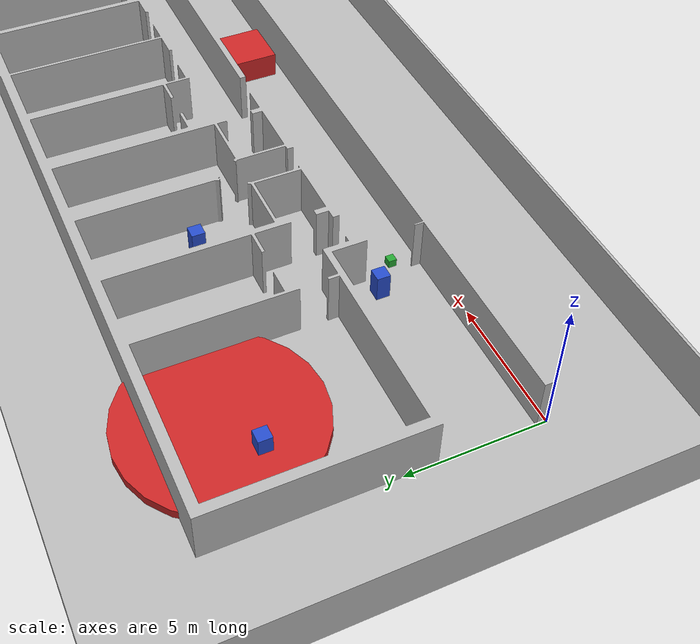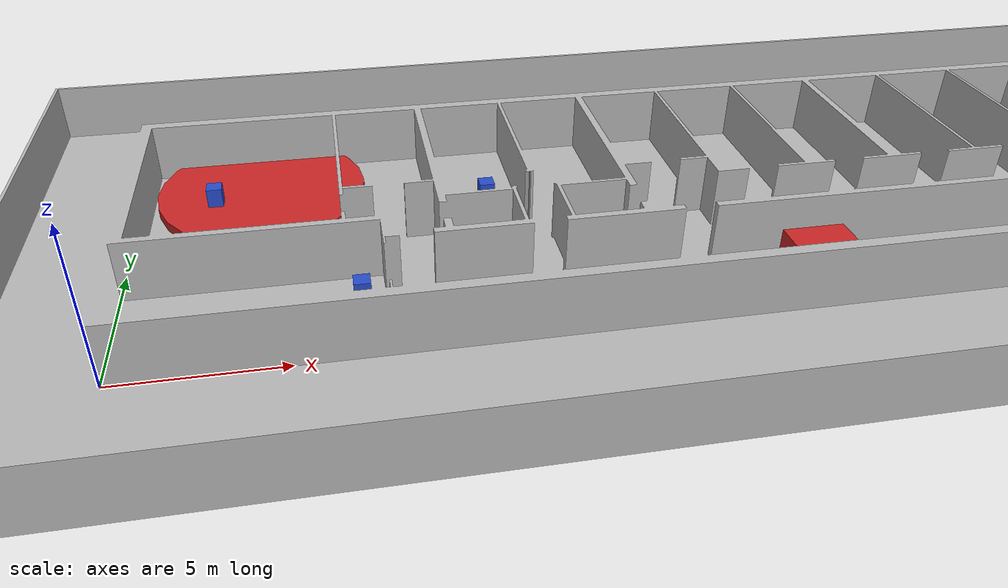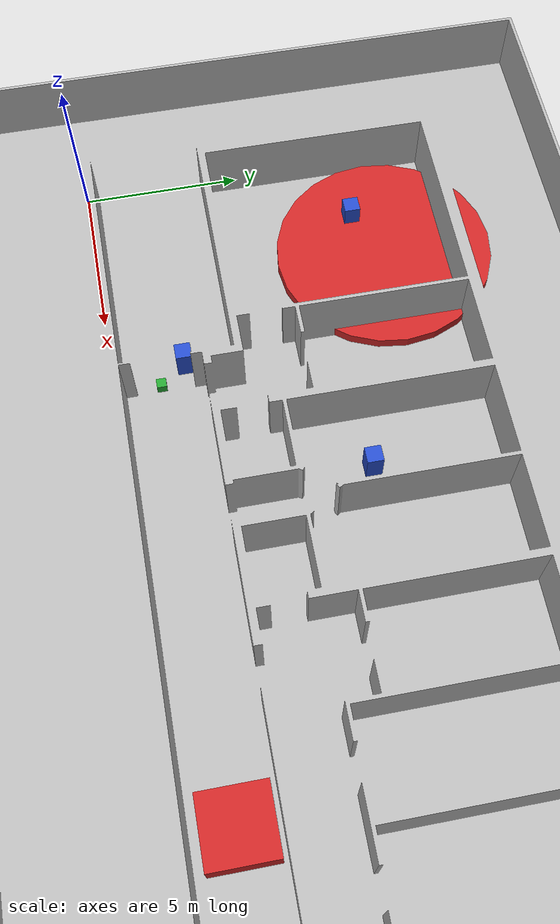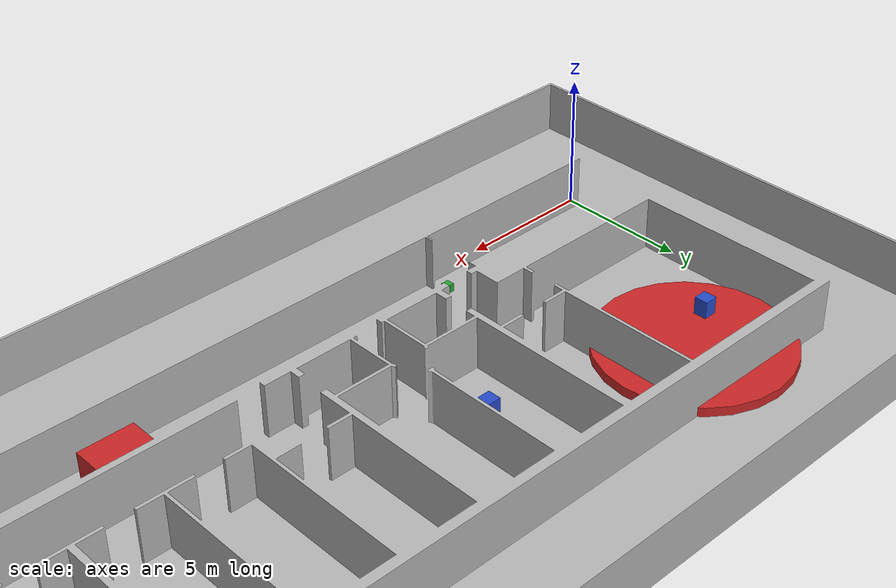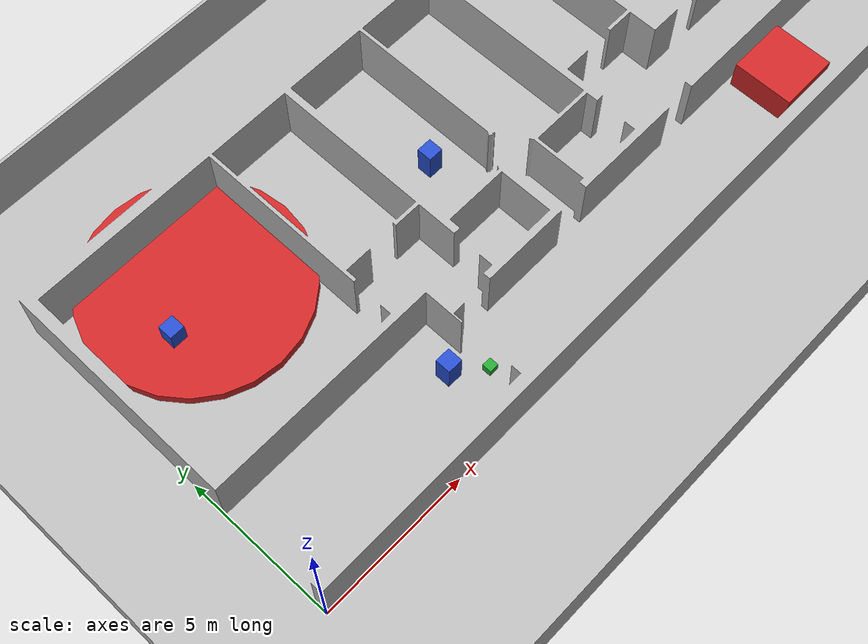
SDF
<?xml version="1.0" ?>
<sdf version="1.4">
  <world name="default">
    <!-- Initial Camera Position -->
    <gui>
      <camera name="camera_default">
        <pose>
          -4.0 2.0 8.0 0.0 0.7 0.0
        </pose>
      </camera>
    </gui>
    <!-- A global light source -->
    <include>
      <uri>model://sun</uri>
    </include>
    <!-- Own physics settings to speed up simulation -->
    <physics type='ode'>
      <max_step_size>0.01</max_step_size>
      <real_time_factor>1</real_time_factor>
      <real_time_update_rate>100</real_time_update_rate>
      <gravity>0 0 -9.8</gravity>
    </physics>
    <include>
      <uri>model://distributed_systems_department</uri>
    </include>
    <model name='victim_stopfer'>
        <pose frame=''>2.5 8.5 0.5 0 -0 0</pose>
        <include>
           <uri>model://victim</uri>
        </include>
    </model>
    <model name='victim_taker'>
        <pose frame=''>11.50 7.3 0.5 0 -0 0</pose>
        <include>
           <uri>model://victim</uri>
        </include>
    </model>
    <model name='victim_postdoc'>
        <pose frame=''>7.0 2.3 0.5 0 -0 0</pose>
        <include>
           <uri>model://victim</uri>
        </include>
    </model>
    <model name='fire_floor'>
        <pose frame=''>21.0 1.7 0.5 0 -0 0</pose>
        <include>
           <uri>model://fire</uri>
        </include>
    </model>
    <model name='contaminated_area_lab'>
        <pose frame=''>4.0 9.3 0.1 0 -0 0</pose>
    	<static>true</static>
		<link name='link'>
			<visual name='visual'>
				<geometry>
					<cylinder>
					  	<radius>3.50</radius>
					  	<length>0.50</length>
					</cylinder>
				</geometry>
				<material>
					<script>
						<name>Gazebo/Red</name>
						<uri>file://media/materials/scripts/gazebo.material</uri>
					</script>
				</material>
			</visual>
			<self_collide>0</self_collide>
			<kinematic>0</kinematic>
			<gravity>1</gravity>
		</link>
    </model>
    <model name='landmark_door_floor'>
        <pose frame=''>7.8 1.5 0.5 0 -0 0</pose>
        <include>
           <uri>model://landmark</uri>
        </include>
    </model>
  </world>
</sdf>

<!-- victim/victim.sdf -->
<sdf version="1.4">
    <model name='victim'>
		<link name='link'>
			<inertial>
		  		<mass>1</mass>
			  	<inertia>
					<ixx>0.166667</ixx>
					<ixy>0</ixy>
					<ixz>0</ixz>
					<iyy>0.166667</iyy>
					<iyz>0</iyz>
					<izz>0.166667</izz>
		  		</inertia>
			</inertial>
			<collision name='collision'>
				  <geometry>
						<box>
						  	<size>0.5 0.5 1</size>
						</box>
				  </geometry>
				  <max_contacts>10</max_contacts>
				  <surface>
						<contact>
						  	<ode/>
						</contact>
						<bounce/>
						<friction>
						  	<torsional>
							<ode/>
						  	</torsional>
						  	<ode/>
						</friction>
				  </surface>
			</collision>
			<visual name='visual'>
				  <geometry>
						<box>
						  	<size>0.5 0.5 1</size>
						</box>
				  </geometry>
				  <material>
						<script>
							  <name>Gazebo/Blue</name>
							  <uri>file://media/materials/scripts/gazebo.material</uri>
						</script>
				  </material>
			</visual>
			<self_collide>0</self_collide>
			<kinematic>0</kinematic>
			<gravity>1</gravity>
		</link>
	</model>
</sdf>

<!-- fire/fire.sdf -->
<sdf version="1.4">
    <model name='fire'>
    	<static>true</static>
		<link name='link'>
			<inertial>
		  		<mass>1</mass>
			  	<inertia>
					<ixx>0.166667</ixx>
					<ixy>0</ixy>
					<ixz>0</ixz>
					<iyy>0.166667</iyy>
					<iyz>0</iyz>
					<izz>0.166667</izz>
		  		</inertia>
			</inertial>
			<visual name='visual'>
				  <geometry>
						<box>
						  	<size>2.0 2.0 1</size>
						</box>
				  </geometry>
				  <material>
						<script>
							  <name>Gazebo/Red</name>
							  <uri>file://media/materials/scripts/gazebo.material</uri>
						</script>
				  </material>
			</visual>
			<self_collide>0</self_collide>
			<kinematic>0</kinematic>
			<gravity>1</gravity>
		</link>
	</model>
</sdf>

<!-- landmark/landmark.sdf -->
<sdf version="1.4">
    <model name='landmark'>
		<static>true</static>
		<link name='link'>
			<visual name='visual'>
				  <geometry>
						<box>
						  	<size>0.3 0.3 0.3</size>
						</box>
				  </geometry>
				  <material>
						<script>
							  <name>Gazebo/Green</name>
							  <uri>file://media/materials/scripts/gazebo.material</uri>
						</script>
				  </material>
			</visual>
			<self_collide>0</self_collide>
			<kinematic>0</kinematic>
			<gravity>1</gravity>
		</link>
	</model>
</sdf>

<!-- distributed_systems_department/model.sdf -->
<sdf version="1.4">
  <model name="distributed_systems_department">
    <static>true</static>
    <link name="link">
      <pose>0 0 0 0 0 0</pose>
      <collision name="coll">
        <geometry>
          <mesh>
            <uri>model://distributed_systems_department/meshes/floorplan.stl</uri>
            <scale>0.0254 0.0254 0.0254</scale>
          </mesh>
        </geometry>
        <surface>
          <friction>
            <ode>
              <mu>100</mu>
              <mu2>50</mu2>
            </ode>
          </friction>
        </surface>
      </collision>
      <visual name="visual">
        <geometry>
          <mesh>
            <uri>model://distributed_systems_department/meshes/floorplan.stl</uri>
            <scale>0.0254 0.0254 0.0254</scale>
          </mesh>
        </geometry>
      </visual>
    </link>
  </model>
</sdf>
